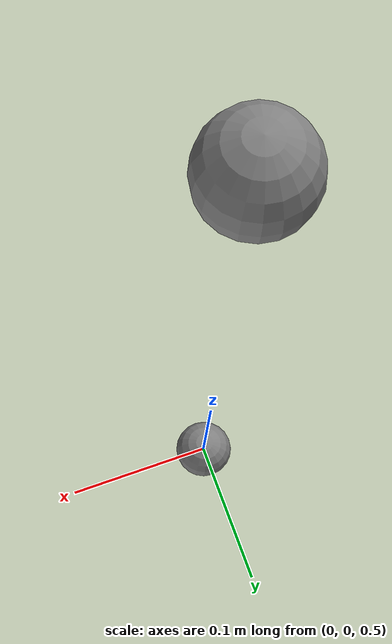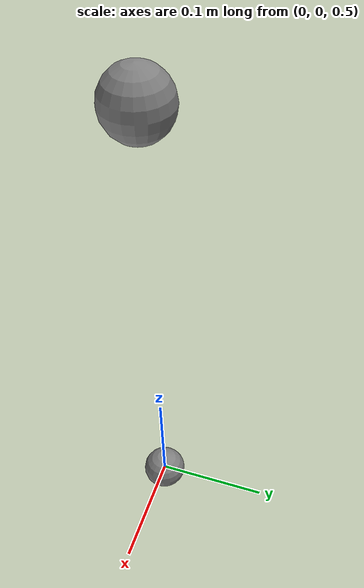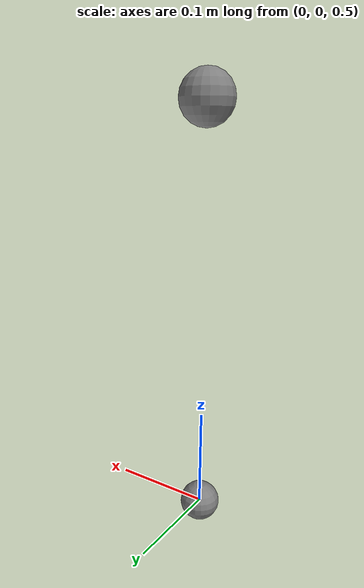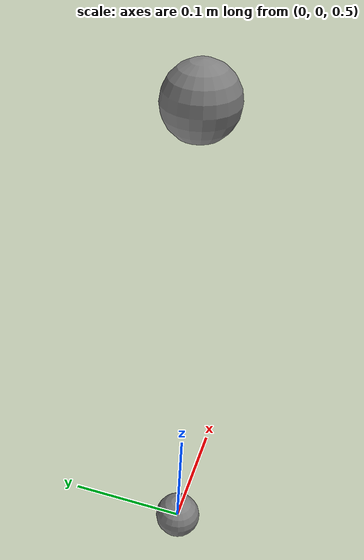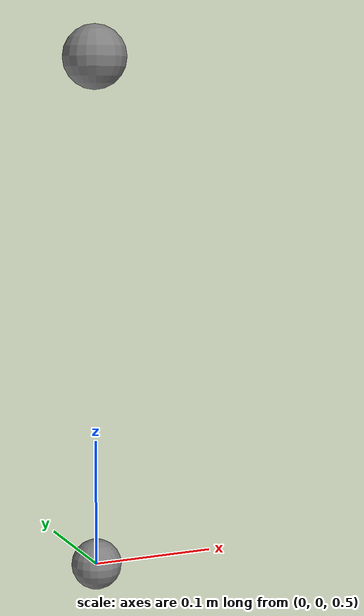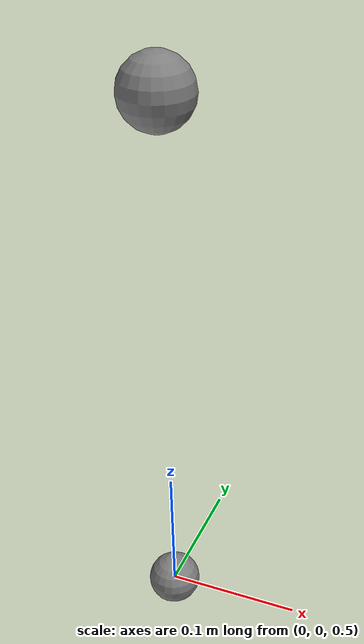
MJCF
<mujoco model="ohmc_ik_contract_fixture">
  <compiler angle="radian"/>
  <option timestep="0.002" gravity="0 0 0"/>
  <worldbody>
    <body name="pelvis" pos="0 0 0.9">
      <joint name="waist_roll_joint" type="hinge" axis="1 0 0" range="-0.52 0.52"/>
      <geom type="sphere" size="0.025" mass="0.1"/>
      <body name="left_knee_target" pos="0 0 -0.4">
        <geom type="sphere" size="0.02" mass="0.05"/>
      </body>
    </body>
  </worldbody>
</mujoco>
